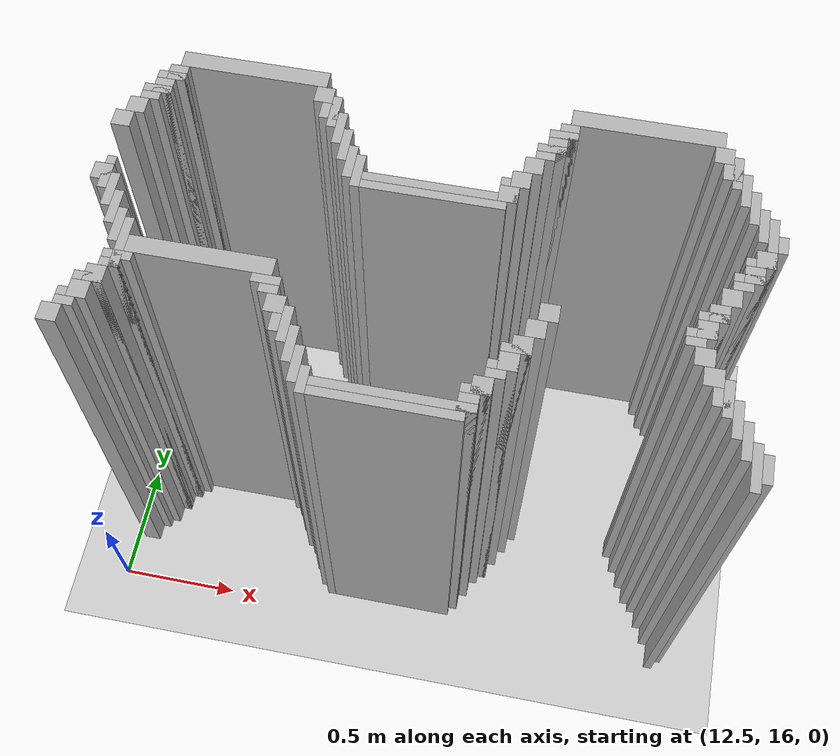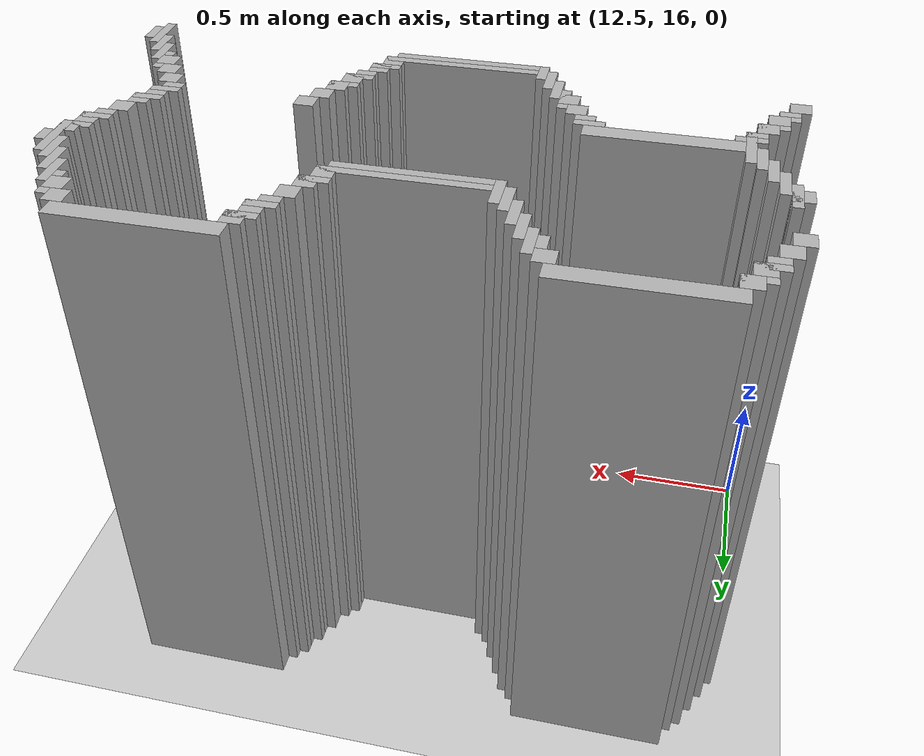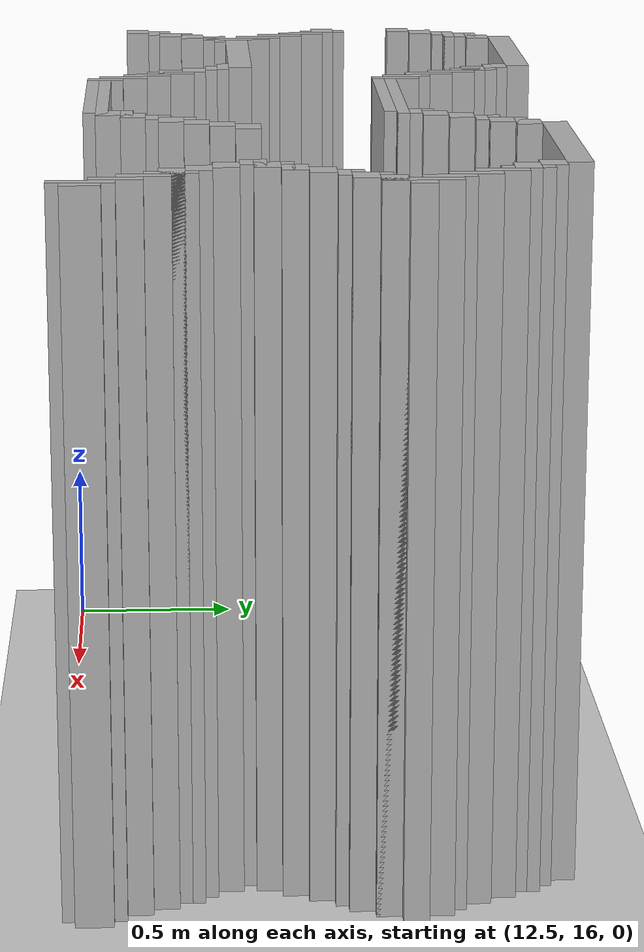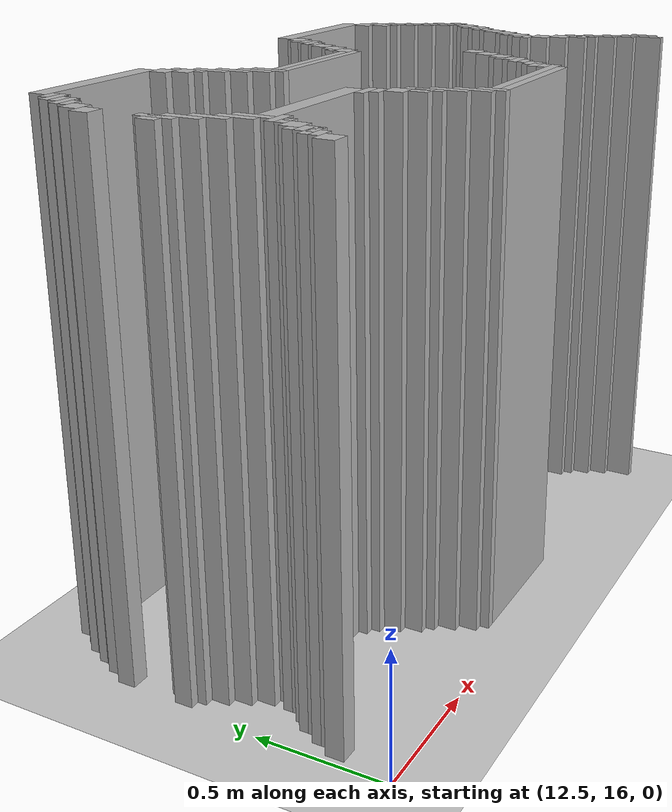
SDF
<sdf version="1.6">
 <world name="slam_world">
  <model name="ground_plane">
   <static>true</static>
   <link name="link">
    <collision name="collision">
     <geometry><plane><normal>0 0 1</normal><size>100 100</size></plane></geometry>
    </collision>
    <visual name="visual">
     <geometry><plane><normal>0 0 1</normal><size>100 100</size></plane></geometry>
     <material>
      <ambient>0.8 0.8 0.8 1</ambient>
      <diffuse>0.8 0.8 0.8 1</diffuse>
      <specular>0.8 0.8 0.8 1</specular>
     </material>
    </visual>
   </link>
  </model>
  <model name="wall_9">
   <static>true</static>
   <pose>12.981438515081207 17.366589327146173 1.0 0 0 0</pose>
   <link name="link">
    <collision name="collision">
     <geometry><box><size>0.5568445475638051 0.06960556844547564 2.0</size></box></geometry>
    </collision>
    <visual name="visual">
     <geometry><box><size>0.5568445475638051 0.06960556844547564 2.0</size></box></geometry>
     <material><ambient>0.5 0.5 0.5 1</ambient><diffuse>0.7 0.7 0.7 1</diffuse></material>
    </visual>
   </link>
  </model>
  <model name="wall_10">
   <static>true</static>
   <pose>14.443155452436194 17.366589327146173 1.0 0 0 0</pose>
   <link name="link">
    <collision name="collision">
     <geometry><box><size>0.5568445475638051 0.06960556844547564 2.0</size></box></geometry>
    </collision>
    <visual name="visual">
     <geometry><box><size>0.5568445475638051 0.06960556844547564 2.0</size></box></geometry>
     <material><ambient>0.5 0.5 0.5 1</ambient><diffuse>0.7 0.7 0.7 1</diffuse></material>
    </visual>
   </link>
  </model>
  <model name="wall_27">
   <static>true</static>
   <pose>12.703016241299304 17.296983758700694 1.0 0 0 0</pose>
   <link name="link">
    <collision name="collision">
     <geometry><box><size>0.06960556844547564 0.06960556844547564 2.0</size></box></geometry>
    </collision>
    <visual name="visual">
     <geometry><box><size>0.06960556844547564 0.06960556844547564 2.0</size></box></geometry>
     <material><ambient>0.5 0.5 0.5 1</ambient><diffuse>0.7 0.7 0.7 1</diffuse></material>
    </visual>
   </link>
  </model>
  <model name="wall_28">
   <static>true</static>
   <pose>13.259860788863108 17.296983758700694 1.0 0 0 0</pose>
   <link name="link">
    <collision name="collision">
     <geometry><box><size>0.06960556844547564 0.06960556844547564 2.0</size></box></geometry>
    </collision>
    <visual name="visual">
     <geometry><box><size>0.06960556844547564 0.06960556844547564 2.0</size></box></geometry>
     <material><ambient>0.5 0.5 0.5 1</ambient><diffuse>0.7 0.7 0.7 1</diffuse></material>
    </visual>
   </link>
  </model>
  <model name="wall_29">
   <static>true</static>
   <pose>14.164733178654291 17.296983758700694 1.0 0 0 0</pose>
   <link name="link">
    <collision name="collision">
     <geometry><box><size>0.06960556844547564 0.06960556844547564 2.0</size></box></geometry>
    </collision>
    <visual name="visual">
     <geometry><box><size>0.06960556844547564 0.06960556844547564 2.0</size></box></geometry>
     <material><ambient>0.5 0.5 0.5 1</ambient><diffuse>0.7 0.7 0.7 1</diffuse></material>
    </visual>
   </link>
  </model>
  <model name="wall_30">
   <static>true</static>
   <pose>14.721577726218097 17.296983758700694 1.0 0 0 0</pose>
   <link name="link">
    <collision name="collision">
     <geometry><box><size>0.06960556844547564 0.06960556844547564 2.0</size></box></geometry>
    </collision>
    <visual name="visual">
     <geometry><box><size>0.06960556844547564 0.06960556844547564 2.0</size></box></geometry>
     <material><ambient>0.5 0.5 0.5 1</ambient><diffuse>0.7 0.7 0.7 1</diffuse></material>
    </visual>
   </link>
  </model>
  <model name="wall_47">
   <static>true</static>
   <pose>12.685614849187935 17.279582366589327 1.0 0 0 0</pose>
   <link name="link">
    <collision name="collision">
     <geometry><box><size>0.10440835266821345 0.03480278422273782 2.0</size></box></geometry>
    </collision>
    <visual name="visual">
     <geometry><box><size>0.10440835266821345 0.03480278422273782 2.0</size></box></geometry>
     <material><ambient>0.5 0.5 0.5 1</ambient><diffuse>0.7 0.7 0.7 1</diffuse></material>
    </visual>
   </link>
  </model>
  <model name="wall_48">
   <static>true</static>
   <pose>13.312064965197216 17.22737819025522 1.0 0 0 0</pose>
   <link name="link">
    <collision name="collision">
     <geometry><box><size>0.03480278422273782 0.13921113689095127 2.0</size></box></geometry>
    </collision>
    <visual name="visual">
     <geometry><box><size>0.03480278422273782 0.13921113689095127 2.0</size></box></geometry>
     <material><ambient>0.5 0.5 0.5 1</ambient><diffuse>0.7 0.7 0.7 1</diffuse></material>
    </visual>
   </link>
  </model>
  <model name="wall_49">
   <static>true</static>
   <pose>14.147331786542923 17.279582366589327 1.0 0 0 0</pose>
   <link name="link">
    <collision name="collision">
     <geometry><box><size>0.10440835266821345 0.03480278422273782 2.0</size></box></geometry>
    </collision>
    <visual name="visual">
     <geometry><box><size>0.10440835266821345 0.03480278422273782 2.0</size></box></geometry>
     <material><ambient>0.5 0.5 0.5 1</ambient><diffuse>0.7 0.7 0.7 1</diffuse></material>
    </visual>
   </link>
  </model>
  <model name="wall_50">
   <static>true</static>
   <pose>14.773781902552203 17.22737819025522 1.0 0 0 0</pose>
   <link name="link">
    <collision name="collision">
     <geometry><box><size>0.03480278422273782 0.13921113689095127 2.0</size></box></geometry>
    </collision>
    <visual name="visual">
     <geometry><box><size>0.03480278422273782 0.13921113689095127 2.0</size></box></geometry>
     <material><ambient>0.5 0.5 0.5 1</ambient><diffuse>0.7 0.7 0.7 1</diffuse></material>
    </visual>
   </link>
  </model>
  <model name="wall_67">
   <static>true</static>
   <pose>12.668213457076565 17.22737819025522 1.0 0 0 0</pose>
   <link name="link">
    <collision name="collision">
     <geometry><box><size>0.06960556844547564 0.06960556844547564 2.0</size></box></geometry>
    </collision>
    <visual name="visual">
     <geometry><box><size>0.06960556844547564 0.06960556844547564 2.0</size></box></geometry>
     <material><ambient>0.5 0.5 0.5 1</ambient><diffuse>0.7 0.7 0.7 1</diffuse></material>
    </visual>
   </link>
  </model>
  <model name="wall_68">
   <static>true</static>
   <pose>13.294663573085847 17.22737819025522 1.0 0 0 0</pose>
   <link name="link">
    <collision name="collision">
     <geometry><box><size>0.06960556844547564 0.06960556844547564 2.0</size></box></geometry>
    </collision>
    <visual name="visual">
     <geometry><box><size>0.06960556844547564 0.06960556844547564 2.0</size></box></geometry>
     <material><ambient>0.5 0.5 0.5 1</ambient><diffuse>0.7 0.7 0.7 1</diffuse></material>
    </visual>
   </link>
  </model>
  <model name="wall_69">
   <static>true</static>
   <pose>14.129930394431554 17.22737819025522 1.0 0 0 0</pose>
   <link name="link">
    <collision name="collision">
     <geometry><box><size>0.06960556844547564 0.06960556844547564 2.0</size></box></geometry>
    </collision>
    <visual name="visual">
     <geometry><box><size>0.06960556844547564 0.06960556844547564 2.0</size></box></geometry>
     <material><ambient>0.5 0.5 0.5 1</ambient><diffuse>0.7 0.7 0.7 1</diffuse></material>
    </visual>
   </link>
  </model>
  <model name="wall_70">
   <static>true</static>
   <pose>14.756380510440835 17.22737819025522 1.0 0 0 0</pose>
   <link name="link">
    <collision name="collision">
     <geometry><box><size>0.06960556844547564 0.06960556844547564 2.0</size></box></geometry>
    </collision>
    <visual name="visual">
     <geometry><box><size>0.06960556844547564 0.06960556844547564 2.0</size></box></geometry>
     <material><ambient>0.5 0.5 0.5 1</ambient><diffuse>0.7 0.7 0.7 1</diffuse></material>
    </visual>
   </link>
  </model>
  <model name="wall_87">
   <static>true</static>
   <pose>12.650812064965196 17.209976798143853 1.0 0 0 0</pose>
   <link name="link">
    <collision name="collision">
     <geometry><box><size>0.10440835266821345 0.03480278422273782 2.0</size></box></geometry>
    </collision>
    <visual name="visual">
     <geometry><box><size>0.10440835266821345 0.03480278422273782 2.0</size></box></geometry>
     <material><ambient>0.5 0.5 0.5 1</ambient><diffuse>0.7 0.7 0.7 1</diffuse></material>
    </visual>
   </link>
  </model>
  <model name="wall_88">
   <static>true</static>
   <pose>13.346867749419953 17.157772621809745 1.0 0 0 0</pose>
   <link name="link">
    <collision name="collision">
     <geometry><box><size>0.03480278422273782 0.13921113689095127 2.0</size></box></geometry>
    </collision>
    <visual name="visual">
     <geometry><box><size>0.03480278422273782 0.13921113689095127 2.0</size></box></geometry>
     <material><ambient>0.5 0.5 0.5 1</ambient><diffuse>0.7 0.7 0.7 1</diffuse></material>
    </visual>
   </link>
  </model>
  <model name="wall_89">
   <static>true</static>
   <pose>14.112529002320185 17.209976798143853 1.0 0 0 0</pose>
   <link name="link">
    <collision name="collision">
     <geometry><box><size>0.10440835266821345 0.03480278422273782 2.0</size></box></geometry>
    </collision>
    <visual name="visual">
     <geometry><box><size>0.10440835266821345 0.03480278422273782 2.0</size></box></geometry>
     <material><ambient>0.5 0.5 0.5 1</ambient><diffuse>0.7 0.7 0.7 1</diffuse></material>
    </visual>
   </link>
  </model>
  <model name="wall_90">
   <static>true</static>
   <pose>14.80858468677494 17.157772621809745 1.0 0 0 0</pose>
   <link name="link">
    <collision name="collision">
     <geometry><box><size>0.03480278422273782 0.13921113689095127 2.0</size></box></geometry>
    </collision>
    <visual name="visual">
     <geometry><box><size>0.03480278422273782 0.13921113689095127 2.0</size></box></geometry>
     <material><ambient>0.5 0.5 0.5 1</ambient><diffuse>0.7 0.7 0.7 1</diffuse></material>
    </visual>
   </link>
  </model>
  <model name="wall_99">
   <static>true</static>
   <pose>12.633410672853827 17.17517401392111 1.0 0 0 0</pose>
   <link name="link">
    <collision name="collision">
     <geometry><box><size>0.06960556844547564 0.03480278422273782 2.0</size></box></geometry>
    </collision>
    <visual name="visual">
     <geometry><box><size>0.06960556844547564 0.03480278422273782 2.0</size></box></geometry>
     <material><ambient>0.5 0.5 0.5 1</ambient><diffuse>0.7 0.7 0.7 1</diffuse></material>
    </visual>
   </link>
  </model>
  <model name="wall_100">
   <static>true</static>
   <pose>14.095127610208817 17.17517401392111 1.0 0 0 0</pose>
   <link name="link">
    <collision name="collision">
     <geometry><box><size>0.06960556844547564 0.03480278422273782 2.0</size></box></geometry>
    </collision>
    <visual name="visual">
     <geometry><box><size>0.06960556844547564 0.03480278422273782 2.0</size></box></geometry>
     <material><ambient>0.5 0.5 0.5 1</ambient><diffuse>0.7 0.7 0.7 1</diffuse></material>
    </visual>
   </link>
  </model>
  <model name="wall_117">
   <static>true</static>
   <pose>12.59860788863109 17.122969837587007 1.0 0 0 0</pose>
   <link name="link">
    <collision name="collision">
     <geometry><box><size>0.06960556844547564 0.06960556844547564 2.0</size></box></geometry>
    </collision>
    <visual name="visual">
     <geometry><box><size>0.06960556844547564 0.06960556844547564 2.0</size></box></geometry>
     <material><ambient>0.5 0.5 0.5 1</ambient><diffuse>0.7 0.7 0.7 1</diffuse></material>
    </visual>
   </link>
  </model>
  <model name="wall_118">
   <static>true</static>
   <pose>13.38167053364269 17.08816705336427 1.0 0 0 0</pose>
   <link name="link">
    <collision name="collision">
     <geometry><box><size>0.03480278422273782 0.13921113689095127 2.0</size></box></geometry>
    </collision>
    <visual name="visual">
     <geometry><box><size>0.03480278422273782 0.13921113689095127 2.0</size></box></geometry>
     <material><ambient>0.5 0.5 0.5 1</ambient><diffuse>0.7 0.7 0.7 1</diffuse></material>
    </visual>
   </link>
  </model>
  <model name="wall_119">
   <static>true</static>
   <pose>14.06032482598608 17.122969837587007 1.0 0 0 0</pose>
   <link name="link">
    <collision name="collision">
     <geometry><box><size>0.06960556844547564 0.06960556844547564 2.0</size></box></geometry>
    </collision>
    <visual name="visual">
     <geometry><box><size>0.06960556844547564 0.06960556844547564 2.0</size></box></geometry>
     <material><ambient>0.5 0.5 0.5 1</ambient><diffuse>0.7 0.7 0.7 1</diffuse></material>
    </visual>
   </link>
  </model>
  <model name="wall_120">
   <static>true</static>
   <pose>14.84338747099768 17.08816705336427 1.0 0 0 0</pose>
   <link name="link">
    <collision name="collision">
     <geometry><box><size>0.03480278422273782 0.13921113689095127 2.0</size></box></geometry>
    </collision>
    <visual name="visual">
     <geometry><box><size>0.03480278422273782 0.13921113689095127 2.0</size></box></geometry>
     <material><ambient>0.5 0.5 0.5 1</ambient><diffuse>0.7 0.7 0.7 1</diffuse></material>
    </visual>
   </link>
  </model>
  <model name="wall_137">
   <static>true</static>
   <pose>12.563805104408353 17.053364269141532 1.0 0 0 0</pose>
   <link name="link">
    <collision name="collision">
     <geometry><box><size>0.06960556844547564 0.06960556844547564 2.0</size></box></geometry>
    </collision>
    <visual name="visual">
     <geometry><box><size>0.06960556844547564 0.06960556844547564 2.0</size></box></geometry>
     <material><ambient>0.5 0.5 0.5 1</ambient><diffuse>0.7 0.7 0.7 1</diffuse></material>
    </visual>
   </link>
  </model>
  <model name="wall_138">
   <static>true</static>
   <pose>13.416473317865428 17.01856148491879 1.0 0 0 0</pose>
   <link name="link">
    <collision name="collision">
     <geometry><box><size>0.03480278422273782 0.13921113689095127 2.0</size></box></geometry>
    </collision>
    <visual name="visual">
     <geometry><box><size>0.03480278422273782 0.13921113689095127 2.0</size></box></geometry>
     <material><ambient>0.5 0.5 0.5 1</ambient><diffuse>0.7 0.7 0.7 1</diffuse></material>
    </visual>
   </link>
  </model>
  <model name="wall_139">
   <static>true</static>
   <pose>14.02552204176334 17.053364269141532 1.0 0 0 0</pose>
   <link name="link">
    <collision name="collision">
     <geometry><box><size>0.06960556844547564 0.06960556844547564 2.0</size></box></geometry>
    </collision>
    <visual name="visual">
     <geometry><box><size>0.06960556844547564 0.06960556844547564 2.0</size></box></geometry>
     <material><ambient>0.5 0.5 0.5 1</ambient><diffuse>0.7 0.7 0.7 1</diffuse></material>
    </visual>
   </link>
  </model>
  <model name="wall_140">
   <static>true</static>
   <pose>14.878190255220417 17.01856148491879 1.0 0 0 0</pose>
   <link name="link">
    <collision name="collision">
     <geometry><box><size>0.03480278422273782 0.13921113689095127 2.0</size></box></geometry>
    </collision>
    <visual name="visual">
     <geometry><box><size>0.03480278422273782 0.13921113689095127 2.0</size></box></geometry>
     <material><ambient>0.5 0.5 0.5 1</ambient><diffuse>0.7 0.7 0.7 1</diffuse></material>
    </visual>
   </link>
  </model>
  <model name="wall_158">
   <static>true</static>
   <pose>13.451276102088167 16.983758700696054 1.0 0 0 0</pose>
   <link name="link">
    <collision name="collision">
     <geometry><box><size>0.03480278422273782 0.13921113689095127 2.0</size></box></geometry>
    </collision>
    <visual name="visual">
     <geometry><box><size>0.03480278422273782 0.13921113689095127 2.0</size></box></geometry>
     <material><ambient>0.5 0.5 0.5 1</ambient><diffuse>0.7 0.7 0.7 1</diffuse></material>
    </visual>
   </link>
  </model>
  <model name="wall_159">
   <static>true</static>
   <pose>14.008120649651971 17.035962877030162 1.0 0 0 0</pose>
   <link name="link">
    <collision name="collision">
     <geometry><box><size>0.10440835266821345 0.03480278422273782 2.0</size></box></geometry>
    </collision>
    <visual name="visual">
     <geometry><box><size>0.10440835266821345 0.03480278422273782 2.0</size></box></geometry>
     <material><ambient>0.5 0.5 0.5 1</ambient><diffuse>0.7 0.7 0.7 1</diffuse></material>
    </visual>
   </link>
  </model>
  <model name="wall_160">
   <static>true</static>
   <pose>14.912993039443155 16.948955916473317 1.0 0 0 0</pose>
   <link name="link">
    <collision name="collision">
     <geometry><box><size>0.03480278422273782 0.2088167053364269 2.0</size></box></geometry>
    </collision>
    <visual name="visual">
     <geometry><box><size>0.03480278422273782 0.2088167053364269 2.0</size></box></geometry>
     <material><ambient>0.5 0.5 0.5 1</ambient><diffuse>0.7 0.7 0.7 1</diffuse></material>
    </visual>
   </link>
  </model>
  <model name="wall_170">
   <static>true</static>
   <pose>13.990719257540603 16.983758700696054 1.0 0 0 0</pose>
   <link name="link">
    <collision name="collision">
     <geometry><box><size>0.06960556844547564 0.06960556844547564 2.0</size></box></geometry>
    </collision>
    <visual name="visual">
     <geometry><box><size>0.06960556844547564 0.06960556844547564 2.0</size></box></geometry>
     <material><ambient>0.5 0.5 0.5 1</ambient><diffuse>0.7 0.7 0.7 1</diffuse></material>
    </visual>
   </link>
  </model>
  <model name="wall_180">
   <static>true</static>
   <pose>13.747099767981437 16.966357308584687 1.0 0 0 0</pose>
   <link name="link">
    <collision name="collision">
     <geometry><box><size>0.5568445475638051 0.03480278422273782 2.0</size></box></geometry>
    </collision>
    <visual name="visual">
     <geometry><box><size>0.5568445475638051 0.03480278422273782 2.0</size></box></geometry>
     <material><ambient>0.5 0.5 0.5 1</ambient><diffuse>0.7 0.7 0.7 1</diffuse></material>
    </visual>
   </link>
  </model>
  <model name="wall_181">
   <static>true</static>
   <pose>14.947795823665892 16.948955916473317 1.0 0 0 0</pose>
   <link name="link">
    <collision name="collision">
     <geometry><box><size>0.03480278422273782 0.06960556844547564 2.0</size></box></geometry>
    </collision>
    <visual name="visual">
     <geometry><box><size>0.03480278422273782 0.06960556844547564 2.0</size></box></geometry>
     <material><ambient>0.5 0.5 0.5 1</ambient><diffuse>0.7 0.7 0.7 1</diffuse></material>
    </visual>
   </link>
  </model>
  <model name="wall_191">
   <static>true</static>
   <pose>13.729698375870068 16.93155452436195 1.0 0 0 0</pose>
   <link name="link">
    <collision name="collision">
     <geometry><box><size>0.5220417633410672 0.03480278422273782 2.0</size></box></geometry>
    </collision>
    <visual name="visual">
     <geometry><box><size>0.5220417633410672 0.03480278422273782 2.0</size></box></geometry>
     <material><ambient>0.5 0.5 0.5 1</ambient><diffuse>0.7 0.7 0.7 1</diffuse></material>
    </visual>
   </link>
  </model>
  <model name="wall_199">
   <static>true</static>
   <pose>14.895591647331786 16.87935034802784 1.0 0 0 0</pose>
   <link name="link">
    <collision name="collision">
     <geometry><box><size>0.06960556844547564 0.06960556844547564 2.0</size></box></geometry>
    </collision>
    <visual name="visual">
     <geometry><box><size>0.06960556844547564 0.06960556844547564 2.0</size></box></geometry>
     <material><ambient>0.5 0.5 0.5 1</ambient><diffuse>0.7 0.7 0.7 1</diffuse></material>
    </visual>
   </link>
  </model>
  <model name="wall_206">
   <static>true</static>
   <pose>12.581206496519721 16.809744779582367 1.0 0 0 0</pose>
   <link name="link">
    <collision name="collision">
     <geometry><box><size>0.03480278422273782 0.13921113689095127 2.0</size></box></geometry>
    </collision>
    <visual name="visual">
     <geometry><box><size>0.03480278422273782 0.13921113689095127 2.0</size></box></geometry>
     <material><ambient>0.5 0.5 0.5 1</ambient><diffuse>0.7 0.7 0.7 1</diffuse></material>
    </visual>
   </link>
  </model>
  <model name="wall_207">
   <static>true</static>
   <pose>14.878190255220417 16.86194895591647 1.0 0 0 0</pose>
   <link name="link">
    <collision name="collision">
     <geometry><box><size>0.10440835266821345 0.03480278422273782 2.0</size></box></geometry>
    </collision>
    <visual name="visual">
     <geometry><box><size>0.10440835266821345 0.03480278422273782 2.0</size></box></geometry>
     <material><ambient>0.5 0.5 0.5 1</ambient><diffuse>0.7 0.7 0.7 1</diffuse></material>
    </visual>
   </link>
  </model>
  <model name="wall_214">
   <static>true</static>
   <pose>12.563805104408353 16.809744779582367 1.0 0 0 0</pose>
   <link name="link">
    <collision name="collision">
     <geometry><box><size>0.06960556844547564 0.06960556844547564 2.0</size></box></geometry>
    </collision>
    <visual name="visual">
     <geometry><box><size>0.06960556844547564 0.06960556844547564 2.0</size></box></geometry>
     <material><ambient>0.5 0.5 0.5 1</ambient><diffuse>0.7 0.7 0.7 1</diffuse></material>
    </visual>
   </link>
  </model>
  <model name="wall_215">
   <static>true</static>
   <pose>14.860788863109049 16.809744779582367 1.0 0 0 0</pose>
   <link name="link">
    <collision name="collision">
     <geometry><box><size>0.06960556844547564 0.06960556844547564 2.0</size></box></geometry>
    </collision>
    <visual name="visual">
     <geometry><box><size>0.06960556844547564 0.06960556844547564 2.0</size></box></geometry>
     <material><ambient>0.5 0.5 0.5 1</ambient><diffuse>0.7 0.7 0.7 1</diffuse></material>
    </visual>
   </link>
  </model>
  <model name="wall_222">
   <static>true</static>
   <pose>12.616009280742459 16.74013921113689 1.0 0 0 0</pose>
   <link name="link">
    <collision name="collision">
     <geometry><box><size>0.03480278422273782 0.13921113689095127 2.0</size></box></geometry>
    </collision>
    <visual name="visual">
     <geometry><box><size>0.03480278422273782 0.13921113689095127 2.0</size></box></geometry>
     <material><ambient>0.5 0.5 0.5 1</ambient><diffuse>0.7 0.7 0.7 1</diffuse></material>
    </visual>
   </link>
  </model>
  <model name="wall_223">
   <static>true</static>
   <pose>14.84338747099768 16.792343387470996 1.0 0 0 0</pose>
   <link name="link">
    <collision name="collision">
     <geometry><box><size>0.10440835266821345 0.03480278422273782 2.0</size></box></geometry>
    </collision>
    <visual name="visual">
     <geometry><box><size>0.10440835266821345 0.03480278422273782 2.0</size></box></geometry>
     <material><ambient>0.5 0.5 0.5 1</ambient><diffuse>0.7 0.7 0.7 1</diffuse></material>
    </visual>
   </link>
  </model>
  <model name="wall_227">
   <static>true</static>
   <pose>14.825986078886311 16.75754060324826 1.0 0 0 0</pose>
   <link name="link">
    <collision name="collision">
     <geometry><box><size>0.06960556844547564 0.03480278422273782 2.0</size></box></geometry>
    </collision>
    <visual name="visual">
     <geometry><box><size>0.06960556844547564 0.03480278422273782 2.0</size></box></geometry>
     <material><ambient>0.5 0.5 0.5 1</ambient><diffuse>0.7 0.7 0.7 1</diffuse></material>
    </visual>
   </link>
  </model>
  <model name="wall_234">
   <static>true</static>
   <pose>12.650812064965196 16.670533642691414 1.0 0 0 0</pose>
   <link name="link">
    <collision name="collision">
     <geometry><box><size>0.03480278422273782 0.13921113689095127 2.0</size></box></geometry>
    </collision>
    <visual name="visual">
     <geometry><box><size>0.03480278422273782 0.13921113689095127 2.0</size></box></geometry>
     <material><ambient>0.5 0.5 0.5 1</ambient><diffuse>0.7 0.7 0.7 1</diffuse></material>
    </visual>
   </link>
  </model>
  <model name="wall_235">
   <static>true</static>
   <pose>14.791183294663572 16.70533642691415 1.0 0 0 0</pose>
   <link name="link">
    <collision name="collision">
     <geometry><box><size>0.06960556844547564 0.06960556844547564 2.0</size></box></geometry>
    </collision>
    <visual name="visual">
     <geometry><box><size>0.06960556844547564 0.06960556844547564 2.0</size></box></geometry>
     <material><ambient>0.5 0.5 0.5 1</ambient><diffuse>0.7 0.7 0.7 1</diffuse></material>
    </visual>
   </link>
  </model>
  <model name="wall_242">
   <static>true</static>
   <pose>12.685614849187935 16.60092807424594 1.0 0 0 0</pose>
   <link name="link">
    <collision name="collision">
     <geometry><box><size>0.03480278422273782 0.13921113689095127 2.0</size></box></geometry>
    </collision>
    <visual name="visual">
     <geometry><box><size>0.03480278422273782 0.13921113689095127 2.0</size></box></geometry>
     <material><ambient>0.5 0.5 0.5 1</ambient><diffuse>0.7 0.7 0.7 1</diffuse></material>
    </visual>
   </link>
  </model>
  <model name="wall_243">
   <static>true</static>
   <pose>14.756380510440835 16.635730858468676 1.0 0 0 0</pose>
   <link name="link">
    <collision name="collision">
     <geometry><box><size>0.06960556844547564 0.06960556844547564 2.0</size></box></geometry>
    </collision>
    <visual name="visual">
     <geometry><box><size>0.06960556844547564 0.06960556844547564 2.0</size></box></geometry>
     <material><ambient>0.5 0.5 0.5 1</ambient><diffuse>0.7 0.7 0.7 1</diffuse></material>
    </visual>
   </link>
  </model>
  <model name="wall_250">
   <static>true</static>
   <pose>12.720417633410673 16.531322505800464 1.0 0 0 0</pose>
   <link name="link">
    <collision name="collision">
     <geometry><box><size>0.03480278422273782 0.2088167053364269 2.0</size></box></geometry>
    </collision>
    <visual name="visual">
     <geometry><box><size>0.03480278422273782 0.2088167053364269 2.0</size></box></geometry>
     <material><ambient>0.5 0.5 0.5 1</ambient><diffuse>0.7 0.7 0.7 1</diffuse></material>
    </visual>
   </link>
  </model>
  <model name="wall_251">
   <static>true</static>
   <pose>14.738979118329466 16.61832946635731 1.0 0 0 0</pose>
   <link name="link">
    <collision name="collision">
     <geometry><box><size>0.10440835266821345 0.03480278422273782 2.0</size></box></geometry>
    </collision>
    <visual name="visual">
     <geometry><box><size>0.10440835266821345 0.03480278422273782 2.0</size></box></geometry>
     <material><ambient>0.5 0.5 0.5 1</ambient><diffuse>0.7 0.7 0.7 1</diffuse></material>
    </visual>
   </link>
  </model>
  <model name="wall_255">
   <static>true</static>
   <pose>14.721577726218097 16.5661252900232 1.0 0 0 0</pose>
   <link name="link">
    <collision name="collision">
     <geometry><box><size>0.06960556844547564 0.06960556844547564 2.0</size></box></geometry>
    </collision>
    <visual name="visual">
     <geometry><box><size>0.06960556844547564 0.06960556844547564 2.0</size></box></geometry>
     <material><ambient>0.5 0.5 0.5 1</ambient><diffuse>0.7 0.7 0.7 1</diffuse></material>
    </visual>
   </link>
  </model>
  <model name="wall_270">
   <static>true</static>
   <pose>12.998839907192576 16.531322505800464 1.0 0 0 0</pose>
   <link name="link">
    <collision name="collision">
     <geometry><box><size>0.5220417633410672 0.06960556844547564 2.0</size></box></geometry>
    </collision>
    <visual name="visual">
     <geometry><box><size>0.5220417633410672 0.06960556844547564 2.0</size></box></geometry>
     <material><ambient>0.5 0.5 0.5 1</ambient><diffuse>0.7 0.7 0.7 1</diffuse></material>
    </visual>
   </link>
  </model>
  <model name="wall_271">
   <static>true</static>
   <pose>14.199535962877029 16.531322505800464 1.0 0 0 0</pose>
   <link name="link">
    <collision name="collision">
     <geometry><box><size>0.06960556844547564 0.06960556844547564 2.0</size></box></geometry>
    </collision>
    <visual name="visual">
     <geometry><box><size>0.06960556844547564 0.06960556844547564 2.0</size></box></geometry>
     <material><ambient>0.5 0.5 0.5 1</ambient><diffuse>0.7 0.7 0.7 1</diffuse></material>
    </visual>
   </link>
  </model>
  <model name="wall_272">
   <static>true</static>
   <pose>14.704176334106728 16.54872389791183 1.0 0 0 0</pose>
   <link name="link">
    <collision name="collision">
     <geometry><box><size>0.10440835266821345 0.03480278422273782 2.0</size></box></geometry>
    </collision>
    <visual name="visual">
     <geometry><box><size>0.10440835266821345 0.03480278422273782 2.0</size></box></geometry>
     <material><ambient>0.5 0.5 0.5 1</ambient><diffuse>0.7 0.7 0.7 1</diffuse></material>
    </visual>
   </link>
  </model>
  <model name="wall_276">
   <static>true</static>
   <pose>14.68677494199536 16.513921113689094 1.0 0 0 0</pose>
   <link name="link">
    <collision name="collision">
     <geometry><box><size>0.06960556844547564 0.03480278422273782 2.0</size></box></geometry>
    </collision>
    <visual name="visual">
     <geometry><box><size>0.06960556844547564 0.03480278422273782 2.0</size></box></geometry>
     <material><ambient>0.5 0.5 0.5 1</ambient><diffuse>0.7 0.7 0.7 1</diffuse></material>
    </visual>
   </link>
  </model>
  <model name="wall_290">
   <static>true</static>
   <pose>12.720417633410673 16.479118329466356 1.0 0 0 0</pose>
   <link name="link">
    <collision name="collision">
     <geometry><box><size>0.10440835266821345 0.03480278422273782 2.0</size></box></geometry>
    </collision>
    <visual name="visual">
     <geometry><box><size>0.10440835266821345 0.03480278422273782 2.0</size></box></geometry>
     <material><ambient>0.5 0.5 0.5 1</ambient><diffuse>0.7 0.7 0.7 1</diffuse></material>
    </visual>
   </link>
  </model>
  <model name="wall_291">
   <static>true</static>
   <pose>13.24245939675174 16.479118329466356 1.0 0 0 0</pose>
   <link name="link">
    <collision name="collision">
     <geometry><box><size>0.10440835266821345 0.03480278422273782 2.0</size></box></geometry>
    </collision>
    <visual name="visual">
     <geometry><box><size>0.10440835266821345 0.03480278422273782 2.0</size></box></geometry>
     <material><ambient>0.5 0.5 0.5 1</ambient><diffuse>0.7 0.7 0.7 1</diffuse></material>
    </visual>
   </link>
  </model>
  <model name="wall_292">
   <static>true</static>
   <pose>14.164733178654291 16.46171693735499 1.0 0 0 0</pose>
   <link name="link">
    <collision name="collision">
     <geometry><box><size>0.06960556844547564 0.06960556844547564 2.0</size></box></geometry>
    </collision>
    <visual name="visual">
     <geometry><box><size>0.06960556844547564 0.06960556844547564 2.0</size></box></geometry>
     <material><ambient>0.5 0.5 0.5 1</ambient><diffuse>0.7 0.7 0.7 1</diffuse></material>
    </visual>
   </link>
  </model>
  <model name="wall_293">
   <static>true</static>
   <pose>14.721577726218097 16.46171693735499 1.0 0 0 0</pose>
   <link name="link">
    <collision name="collision">
     <geometry><box><size>0.06960556844547564 0.06960556844547564 2.0</size></box></geometry>
    </collision>
    <visual name="visual">
     <geometry><box><size>0.06960556844547564 0.06960556844547564 2.0</size></box></geometry>
     <material><ambient>0.5 0.5 0.5 1</ambient><diffuse>0.7 0.7 0.7 1</diffuse></material>
    </visual>
   </link>
  </model>
  <model name="wall_298">
   <static>true</static>
   <pose>12.703016241299304 16.44431554524362 1.0 0 0 0</pose>
   <link name="link">
    <collision name="collision">
     <geometry><box><size>0.06960556844547564 0.03480278422273782 2.0</size></box></geometry>
    </collision>
    <visual name="visual">
     <geometry><box><size>0.06960556844547564 0.03480278422273782 2.0</size></box></geometry>
     <material><ambient>0.5 0.5 0.5 1</ambient><diffuse>0.7 0.7 0.7 1</diffuse></material>
    </visual>
   </link>
  </model>
  <model name="wall_299">
   <static>true</static>
   <pose>13.259860788863108 16.44431554524362 1.0 0 0 0</pose>
   <link name="link">
    <collision name="collision">
     <geometry><box><size>0.06960556844547564 0.03480278422273782 2.0</size></box></geometry>
    </collision>
    <visual name="visual">
     <geometry><box><size>0.06960556844547564 0.03480278422273782 2.0</size></box></geometry>
     <material><ambient>0.5 0.5 0.5 1</ambient><diffuse>0.7 0.7 0.7 1</diffuse></material>
    </visual>
   </link>
  </model>
  <model name="wall_313">
   <static>true</static>
   <pose>12.668213457076565 16.39211136890951 1.0 0 0 0</pose>
   <link name="link">
    <collision name="collision">
     <geometry><box><size>0.06960556844547564 0.06960556844547564 2.0</size></box></geometry>
    </collision>
    <visual name="visual">
     <geometry><box><size>0.06960556844547564 0.06960556844547564 2.0</size></box></geometry>
     <material><ambient>0.5 0.5 0.5 1</ambient><diffuse>0.7 0.7 0.7 1</diffuse></material>
    </visual>
   </link>
  </model>
  <model name="wall_314">
   <static>true</static>
   <pose>13.294663573085847 16.39211136890951 1.0 0 0 0</pose>
   <link name="link">
    <collision name="collision">
     <geometry><box><size>0.06960556844547564 0.06960556844547564 2.0</size></box></geometry>
    </collision>
    <visual name="visual">
     <geometry><box><size>0.06960556844547564 0.06960556844547564 2.0</size></box></geometry>
     <material><ambient>0.5 0.5 0.5 1</ambient><diffuse>0.7 0.7 0.7 1</diffuse></material>
    </visual>
   </link>
  </model>
  <model name="wall_315">
   <static>true</static>
   <pose>14.129930394431554 16.39211136890951 1.0 0 0 0</pose>
   <link name="link">
    <collision name="collision">
     <geometry><box><size>0.06960556844547564 0.06960556844547564 2.0</size></box></geometry>
    </collision>
    <visual name="visual">
     <geometry><box><size>0.06960556844547564 0.06960556844547564 2.0</size></box></geometry>
     <material><ambient>0.5 0.5 0.5 1</ambient><diffuse>0.7 0.7 0.7 1</diffuse></material>
    </visual>
   </link>
  </model>
  <model name="wall_316">
   <static>true</static>
   <pose>14.756380510440835 16.39211136890951 1.0 0 0 0</pose>
   <link name="link">
    <collision name="collision">
     <geometry><box><size>0.06960556844547564 0.06960556844547564 2.0</size></box></geometry>
    </collision>
    <visual name="visual">
     <geometry><box><size>0.06960556844547564 0.06960556844547564 2.0</size></box></geometry>
     <material><ambient>0.5 0.5 0.5 1</ambient><diffuse>0.7 0.7 0.7 1</diffuse></material>
    </visual>
   </link>
  </model>
  <model name="wall_330">
   <static>true</static>
   <pose>12.650812064965196 16.374709976798144 1.0 0 0 0</pose>
   <link name="link">
    <collision name="collision">
     <geometry><box><size>0.10440835266821345 0.03480278422273782 2.0</size></box></geometry>
    </collision>
    <visual name="visual">
     <geometry><box><size>0.10440835266821345 0.03480278422273782 2.0</size></box></geometry>
     <material><ambient>0.5 0.5 0.5 1</ambient><diffuse>0.7 0.7 0.7 1</diffuse></material>
    </visual>
   </link>
  </model>
  <model name="wall_331">
   <static>true</static>
   <pose>13.346867749419953 16.322505800464036 1.0 0 0 0</pose>
   <link name="link">
    <collision name="collision">
     <geometry><box><size>0.03480278422273782 0.13921113689095127 2.0</size></box></geometry>
    </collision>
    <visual name="visual">
     <geometry><box><size>0.03480278422273782 0.13921113689095127 2.0</size></box></geometry>
     <material><ambient>0.5 0.5 0.5 1</ambient><diffuse>0.7 0.7 0.7 1</diffuse></material>
    </visual>
   </link>
  </model>
  <model name="wall_332">
   <static>true</static>
   <pose>14.112529002320185 16.374709976798144 1.0 0 0 0</pose>
   <link name="link">
    <collision name="collision">
     <geometry><box><size>0.10440835266821345 0.03480278422273782 2.0</size></box></geometry>
    </collision>
    <visual name="visual">
     <geometry><box><size>0.10440835266821345 0.03480278422273782 2.0</size></box></geometry>
     <material><ambient>0.5 0.5 0.5 1</ambient><diffuse>0.7 0.7 0.7 1</diffuse></material>
    </visual>
   </link>
  </model>
  <model name="wall_333">
   <static>true</static>
   <pose>14.80858468677494 16.322505800464036 1.0 0 0 0</pose>
   <link name="link">
    <collision name="collision">
     <geometry><box><size>0.03480278422273782 0.13921113689095127 2.0</size></box></geometry>
    </collision>
    <visual name="visual">
     <geometry><box><size>0.03480278422273782 0.13921113689095127 2.0</size></box></geometry>
     <material><ambient>0.5 0.5 0.5 1</ambient><diffuse>0.7 0.7 0.7 1</diffuse></material>
    </visual>
   </link>
  </model>
  <model name="wall_347">
   <static>true</static>
   <pose>12.633410672853827 16.322505800464036 1.0 0 0 0</pose>
   <link name="link">
    <collision name="collision">
     <geometry><box><size>0.06960556844547564 0.06960556844547564 2.0</size></box></geometry>
    </collision>
    <visual name="visual">
     <geometry><box><size>0.06960556844547564 0.06960556844547564 2.0</size></box></geometry>
     <material><ambient>0.5 0.5 0.5 1</ambient><diffuse>0.7 0.7 0.7 1</diffuse></material>
    </visual>
   </link>
  </model>
  <model name="wall_348">
   <static>true</static>
   <pose>13.329466357308585 16.322505800464036 1.0 0 0 0</pose>
   <link name="link">
    <collision name="collision">
     <geometry><box><size>0.06960556844547564 0.06960556844547564 2.0</size></box></geometry>
    </collision>
    <visual name="visual">
     <geometry><box><size>0.06960556844547564 0.06960556844547564 2.0</size></box></geometry>
     <material><ambient>0.5 0.5 0.5 1</ambient><diffuse>0.7 0.7 0.7 1</diffuse></material>
    </visual>
   </link>
  </model>
  <model name="wall_349">
   <static>true</static>
   <pose>14.095127610208817 16.322505800464036 1.0 0 0 0</pose>
   <link name="link">
    <collision name="collision">
     <geometry><box><size>0.06960556844547564 0.06960556844547564 2.0</size></box></geometry>
    </collision>
    <visual name="visual">
     <geometry><box><size>0.06960556844547564 0.06960556844547564 2.0</size></box></geometry>
     <material><ambient>0.5 0.5 0.5 1</ambient><diffuse>0.7 0.7 0.7 1</diffuse></material>
    </visual>
   </link>
  </model>
  <model name="wall_350">
   <static>true</static>
   <pose>14.791183294663572 16.322505800464036 1.0 0 0 0</pose>
   <link name="link">
    <collision name="collision">
     <geometry><box><size>0.06960556844547564 0.06960556844547564 2.0</size></box></geometry>
    </collision>
    <visual name="visual">
     <geometry><box><size>0.06960556844547564 0.06960556844547564 2.0</size></box></geometry>
     <material><ambient>0.5 0.5 0.5 1</ambient><diffuse>0.7 0.7 0.7 1</diffuse></material>
    </visual>
   </link>
  </model>
  <model name="wall_364">
   <static>true</static>
   <pose>12.616009280742459 16.30510440835267 1.0 0 0 0</pose>
   <link name="link">
    <collision name="collision">
     <geometry><box><size>0.10440835266821345 0.03480278422273782 2.0</size></box></geometry>
    </collision>
    <visual name="visual">
     <geometry><box><size>0.10440835266821345 0.03480278422273782 2.0</size></box></geometry>
     <material><ambient>0.5 0.5 0.5 1</ambient><diffuse>0.7 0.7 0.7 1</diffuse></material>
    </visual>
   </link>
  </model>
  <model name="wall_365">
   <static>true</static>
   <pose>13.38167053364269 16.25290023201856 1.0 0 0 0</pose>
   <link name="link">
    <collision name="collision">
     <geometry><box><size>0.03480278422273782 0.13921113689095127 2.0</size></box></geometry>
    </collision>
    <visual name="visual">
     <geometry><box><size>0.03480278422273782 0.13921113689095127 2.0</size></box></geometry>
     <material><ambient>0.5 0.5 0.5 1</ambient><diffuse>0.7 0.7 0.7 1</diffuse></material>
    </visual>
   </link>
  </model>
  <model name="wall_366">
   <static>true</static>
   <pose>14.077726218097448 16.30510440835267 1.0 0 0 0</pose>
   <link name="link">
    <collision name="collision">
     <geometry><box><size>0.10440835266821345 0.03480278422273782 2.0</size></box></geometry>
    </collision>
    <visual name="visual">
     <geometry><box><size>0.10440835266821345 0.03480278422273782 2.0</size></box></geometry>
     <material><ambient>0.5 0.5 0.5 1</ambient><diffuse>0.7 0.7 0.7 1</diffuse></material>
    </visual>
   </link>
  </model>
  <model name="wall_367">
   <static>true</static>
   <pose>14.84338747099768 16.25290023201856 1.0 0 0 0</pose>
   <link name="link">
    <collision name="collision">
     <geometry><box><size>0.03480278422273782 0.13921113689095127 2.0</size></box></geometry>
    </collision>
    <visual name="visual">
     <geometry><box><size>0.03480278422273782 0.13921113689095127 2.0</size></box></geometry>
     <material><ambient>0.5 0.5 0.5 1</ambient><diffuse>0.7 0.7 0.7 1</diffuse></material>
    </visual>
   </link>
  </model>
  <model name="wall_374">
   <static>true</static>
   <pose>12.59860788863109 16.270301624129928 1.0 0 0 0</pose>
   <link name="link">
    <collision name="collision">
     <geometry><box><size>0.06960556844547564 0.03480278422273782 2.0</size></box></geometry>
    </collision>
    <visual name="visual">
     <geometry><box><size>0.06960556844547564 0.03480278422273782 2.0</size></box></geometry>
     <material><ambient>0.5 0.5 0.5 1</ambient><diffuse>0.7 0.7 0.7 1</diffuse></material>
    </visual>
   </link>
  </model>
  <model name="wall_375">
   <static>true</static>
   <pose>14.06032482598608 16.270301624129928 1.0 0 0 0</pose>
   <link name="link">
    <collision name="collision">
     <geometry><box><size>0.06960556844547564 0.03480278422273782 2.0</size></box></geometry>
    </collision>
    <visual name="visual">
     <geometry><box><size>0.06960556844547564 0.03480278422273782 2.0</size></box></geometry>
     <material><ambient>0.5 0.5 0.5 1</ambient><diffuse>0.7 0.7 0.7 1</diffuse></material>
    </visual>
   </link>
  </model>
  <model name="wall_389">
   <static>true</static>
   <pose>12.563805104408353 16.218097447795824 1.0 0 0 0</pose>
   <link name="link">
    <collision name="collision">
     <geometry><box><size>0.06960556844547564 0.06960556844547564 2.0</size></box></geometry>
    </collision>
    <visual name="visual">
     <geometry><box><size>0.06960556844547564 0.06960556844547564 2.0</size></box></geometry>
     <material><ambient>0.5 0.5 0.5 1</ambient><diffuse>0.7 0.7 0.7 1</diffuse></material>
    </visual>
   </link>
  </model>
  <model name="wall_390">
   <static>true</static>
   <pose>13.416473317865428 16.183294663573086 1.0 0 0 0</pose>
   <link name="link">
    <collision name="collision">
     <geometry><box><size>0.03480278422273782 0.13921113689095127 2.0</size></box></geometry>
    </collision>
    <visual name="visual">
     <geometry><box><size>0.03480278422273782 0.13921113689095127 2.0</size></box></geometry>
     <material><ambient>0.5 0.5 0.5 1</ambient><diffuse>0.7 0.7 0.7 1</diffuse></material>
    </visual>
   </link>
  </model>
  <model name="wall_391">
   <static>true</static>
   <pose>14.02552204176334 16.218097447795824 1.0 0 0 0</pose>
   <link name="link">
    <collision name="collision">
     <geometry><box><size>0.06960556844547564 0.06960556844547564 2.0</size></box></geometry>
    </collision>
    <visual name="visual">
     <geometry><box><size>0.06960556844547564 0.06960556844547564 2.0</size></box></geometry>
     <material><ambient>0.5 0.5 0.5 1</ambient><diffuse>0.7 0.7 0.7 1</diffuse></material>
    </visual>
   </link>
  </model>
  <model name="wall_392">
   <static>true</static>
   <pose>14.878190255220417 16.183294663573086 1.0 0 0 0</pose>
   <link name="link">
    <collision name="collision">
     <geometry><box><size>0.03480278422273782 0.13921113689095127 2.0</size></box></geometry>
    </collision>
    <visual name="visual">
     <geometry><box><size>0.03480278422273782 0.13921113689095127 2.0</size></box></geometry>
     <material><ambient>0.5 0.5 0.5 1</ambient><diffuse>0.7 0.7 0.7 1</diffuse></material>
    </visual>
   </link>
  </model>
  <model name="wall_400">
   <static>true</static>
   <pose>14.008120649651971 16.200696055684453 1.0 0 0 0</pose>
   <link name="link">
    <collision name="collision">
     <geometry><box><size>0.10440835266821345 0.03480278422273782 2.0</size></box></geometry>
    </collision>
    <visual name="visual">
     <geometry><box><size>0.10440835266821345 0.03480278422273782 2.0</size></box></geometry>
     <material><ambient>0.5 0.5 0.5 1</ambient><diffuse>0.7 0.7 0.7 1</diffuse></material>
    </visual>
   </link>
  </model>
  <model name="wall_415">
   <static>true</static>
   <pose>13.451276102088167 16.13109048723898 1.0 0 0 0</pose>
   <link name="link">
    <collision name="collision">
     <geometry><box><size>0.03480278422273782 0.10440835266821345 2.0</size></box></geometry>
    </collision>
    <visual name="visual">
     <geometry><box><size>0.03480278422273782 0.10440835266821345 2.0</size></box></geometry>
     <material><ambient>0.5 0.5 0.5 1</ambient><diffuse>0.7 0.7 0.7 1</diffuse></material>
    </visual>
   </link>
  </model>
  <model name="wall_416">
   <static>true</static>
   <pose>13.990719257540603 16.14849187935035 1.0 0 0 0</pose>
   <link name="link">
    <collision name="collision">
     <geometry><box><size>0.06960556844547564 0.06960556844547564 2.0</size></box></geometry>
    </collision>
    <visual name="visual">
     <geometry><box><size>0.06960556844547564 0.06960556844547564 2.0</size></box></geometry>
     <material><ambient>0.5 0.5 0.5 1</ambient><diffuse>0.7 0.7 0.7 1</diffuse></material>
    </visual>
   </link>
  </model>
  <model name="wall_417">
   <static>true</static>
   <pose>14.912993039443155 16.09628770301624 1.0 0 0 0</pose>
   <link name="link">
    <collision name="collision">
     <geometry><box><size>0.03480278422273782 0.17401392111368907 2.0</size></box></geometry>
    </collision>
    <visual name="visual">
     <geometry><box><size>0.03480278422273782 0.17401392111368907 2.0</size></box></geometry>
     <material><ambient>0.5 0.5 0.5 1</ambient><diffuse>0.7 0.7 0.7 1</diffuse></material>
    </visual>
   </link>
  </model>
  <model name="wall_429">
   <static>true</static>
   <pose>13.747099767981437 16.13109048723898 1.0 0 0 0</pose>
   <link name="link">
    <collision name="collision">
     <geometry><box><size>0.5568445475638051 0.03480278422273782 2.0</size></box></geometry>
    </collision>
    <visual name="visual">
     <geometry><box><size>0.5568445475638051 0.03480278422273782 2.0</size></box></geometry>
     <material><ambient>0.5 0.5 0.5 1</ambient><diffuse>0.7 0.7 0.7 1</diffuse></material>
    </visual>
   </link>
  </model>
  <model name="wall_430">
   <static>true</static>
   <pose>14.947795823665892 16.09628770301624 1.0 0 0 0</pose>
   <link name="link">
    <collision name="collision">
     <geometry><box><size>0.03480278422273782 0.10440835266821345 2.0</size></box></geometry>
    </collision>
    <visual name="visual">
     <geometry><box><size>0.03480278422273782 0.10440835266821345 2.0</size></box></geometry>
     <material><ambient>0.5 0.5 0.5 1</ambient><diffuse>0.7 0.7 0.7 1</diffuse></material>
    </visual>
   </link>
  </model>
  <model name="wall_441">
   <static>true</static>
   <pose>13.729698375870068 16.09628770301624 1.0 0 0 0</pose>
   <link name="link">
    <collision name="collision">
     <geometry><box><size>0.5220417633410672 0.03480278422273782 2.0</size></box></geometry>
    </collision>
    <visual name="visual">
     <geometry><box><size>0.5220417633410672 0.03480278422273782 2.0</size></box></geometry>
     <material><ambient>0.5 0.5 0.5 1</ambient><diffuse>0.7 0.7 0.7 1</diffuse></material>
    </visual>
   </link>
  </model>
 </world>
</sdf>
